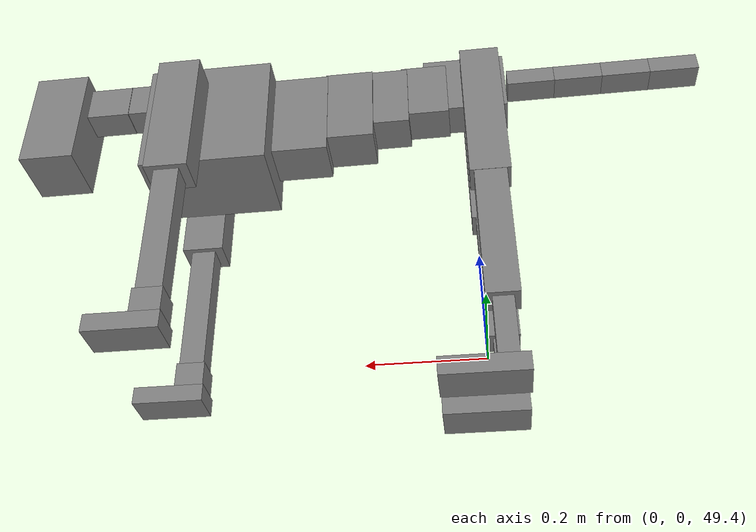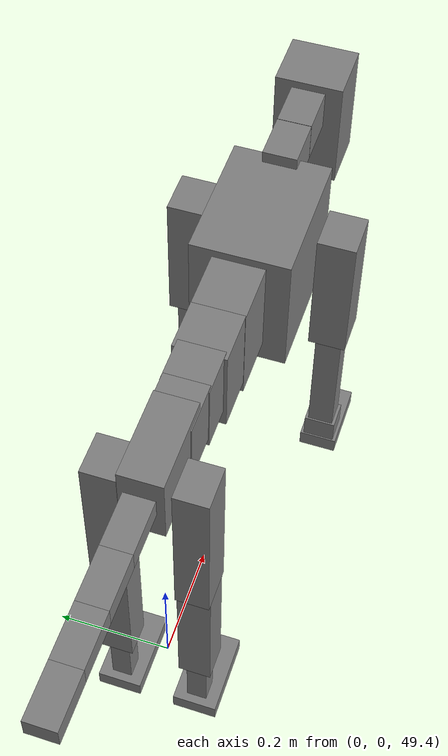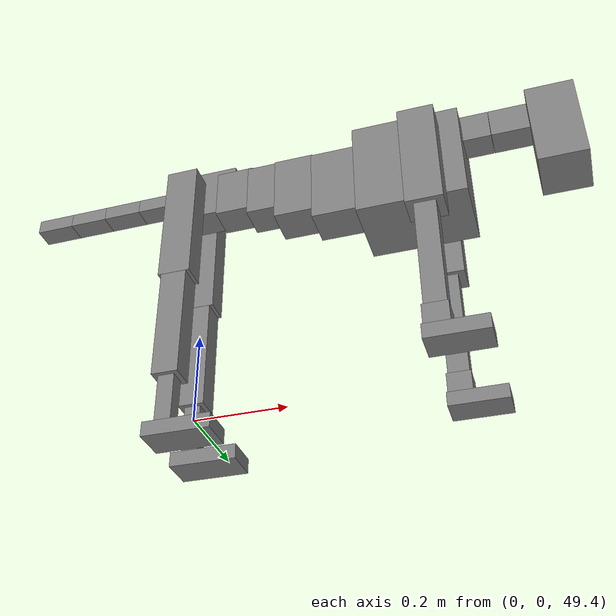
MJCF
<mujoco model="dog">

    <default>
        <joint armature="0.02" stiffness="1" damping="0.2" limited="true"/>
        <geom condim="3" friction="1 0.05 0.05" margin="0.01"/>
        <motor ctrllimited="true" ctrlrange="-1.0 1.0" forcelimited="true" gear="50"/>
    </default>

    <compiler inertiafromgeom="true" angle="radian"/>

    <option timestep="0.016" iterations="50" tolerance="1e-10" solver="Newton" jacobian="dense" cone="pyramidal"/>

    <size nconmax="20000" njmax="60000" nstack="5000000"/>
    <visual>
        <map force="0.1" zfar="30"/>
        <rgba haze="0.15 0.25 0.35 1"/>
        <quality shadowsize="2048"/>
        <global offwidth="800" offheight="800"/>
    </visual>

    <asset>
        <texture type="skybox" builtin="gradient" rgb1="0.3 0.5 0.7" rgb2="0 0 0" width="512" height="512"/>
        <texture name="texplane" type="2d" builtin="checker" rgb1=".2 .3 .4" rgb2=".1 0.15 0.2" width="512" height="512"
                 mark="cross" markrgb=".8 .8 .8"/>
        <texture name="texgeom" type="cube" builtin="flat" mark="cross" width="127" height="1278" rgb1="0.8 0.6 0.4"
                 rgb2="0.8 0.6 0.4" markrgb="1 1 1" random="0.01"/>

        <material name="matplane" reflectance="0.3" texture="texplane" texrepeat="1 1" texuniform="true"/>
        <material name="matgeom" texture="texgeom" texuniform="true" rgba="0.8 0.6 .4 1"/>
    </asset>

    <worldbody>
        <geom name="floor" pos="0 0 0" size="0 0 .25" type="plane" material="matplane" condim="3"/>

        <light directional="false" diffuse=".2 .2 .2" specular="0 0 0" pos="0 0 5" dir="0 0 -1" castshadow="false"/>
        <light mode="targetbodycom" target="torso" directional="false" diffuse=".8 .8 .8" specular="0.3 0.3 0.3"
               pos="0 0 4.0" dir="0 0 -1"/>

        <body name="root" pos="0 0 50">
            <freejoint name="root_1"/>
            <geom type="box" pos="0 0 -0.02" size="0.0774  0.0358  0.063" density="2030"/>

            <body name="spine1" pos="0.054 0 0">
                <joint name="spine1_y" axis="0 1 0" range="0 0.7" limited="true"/>
                <geom type="box" pos="0.02375 0 -0.03" size="0.04375  0.0375  0.05985" density="2030"/>

                <body name="spine2" pos="0.0612 0 0">
                    <joint name="spine2_y" axis="0 1 0" range="-0.15 0.15" limited="true"/>
                    <geom type="box" pos="0.03555  0  -0.04" size="0.04055  0.039  0.06615" density="2030"/>

                    <body name="spine3" pos="0.0730 0 0">
                        <joint name="spine3_y" axis="0 1 0" range="-0.15 0.15" limited="true"/>
                        <geom type="box" pos="0.03555  0  -0.057" size="0.04555  0.0445  0.081" density="2030"/>

                        <body name="spine4" pos="0.0780 0 0">
                            <joint name="spine4_y" axis="0 1 0" range="-0.15 0.15" limited="true"/>
                            <geom type="box" pos="0.05265  0  -0.07" size="0.05265  0.045  0.09135" density="2030"/>

                            <body name="torso" pos="0.1082 0 0">
                                <joint name="torso_y" axis="0 1 0" range="-0.15 0.15" limited="true"/>
                                <geom type="box" pos="0.11925  0  -0.085" size="0.11925  0.085  0.11745"
                                      density="2030"/>

                                <body name="neck1" pos="0.2160  0   0.0180">
                                    <joint name="neck1_y" axis="0 1 0" range="-1.2  -1" limited="true"/>
                                    <geom type="box" pos="0.0423  0  0" size="0.0423  0.03  0.036" density="2325"/>

                                    <body name="neck2" pos="0.0853  0  0">
                                        <joint name="neck2_y" axis="0 1 0" range="0.1  0" limited="true"/>
                                        <geom type="box" pos="0.0423  0  0" size="0.0423  0.03  0.036" density="2325"/>

                                        <body name="head" pos="0.0853  0  0">
                                            <joint name="head_y" axis="0 1 0" range="-0.3  -0.2" limited="true"/>
                                            <geom type="box" pos="0.0531  0  -0.055" size="0.0531  0.06  0.1044"
                                                  density="4030"/>

                                        </body>
                                    </body>
                                </body>

                                <body name="front_shoulder" pos="0.156  0   -0.0480">
                                    <joint name="front_shoulder_y" axis="0 1 0" range="-1 1.5" limited="true"/>
                                    <geom type="box" pos="0 0.13 -0.0996" size="0.0391  0.0334  0.1263" density="1158"/>
                                    <geom type="box" pos="0 -0.13 -0.0996" size="0.0391  0.0334  0.1263"
                                          density="1158"/>

                                    <body name="front_elbow" pos="0  0  -0.1993">
                                        <joint name="front_elbow_y" axis="0 1 0" range="-2 0" limited="true"/>
                                        <geom type="box" pos="0 0.13 -0.1426" size="0.0227  0.0232  0.1426"
                                              density="1081"/>
                                        <geom type="box" pos="0 -0.13 -0.1426" size="0.0227  0.0232  0.1426"
                                              density="1081"/>

                                        <body name="front_wrist" pos="0  0  -0.2853">
                                            <joint name="front_wrist_y" axis="0 1 0" range="-0.2 0" limited="true"/>
                                            <geom type="box" pos="0 0.13 -0.0240" size="0.0259  0.0287  0.0372"
                                                  density="1664"/>
                                            <geom type="box" pos="0 -0.13 -0.0240" size="0.0259  0.0287  0.0372"
                                                  density="1664"/>

                                            <body name="front_finger_end" pos="0  0  -0.0481">
                                                <joint name="front_finger_y" axis="0 1 0" range="-0.4 1"
                                                       limited="true"/>
                                                <geom type="box" pos="0.0344  0.13  -0.0006"
                                                      size="0.0630  0.0344  0.0156" density="1515"/>
                                                <geom type="box" pos="0.0344  -0.13  -0.0006"
                                                      size="0.0630  0.0344  0.0156" density="1515"/>

                                            </body>

                                        </body>
                                    </body>
                                </body>

                            </body>
                        </body>
                    </body>
                </body>
            </body>

            <body name="back_hip" pos="-0.03 0 -0.018">
                <joint name="back_hip_y" axis="0 1 0" range="-1.5 0.3" limited="true"/>
                <geom type="box" pos="0 0.07 -0.1228" size="0.0360  0.0283  0.1456" density="1154"/>
                <geom type="box" pos="0 -0.07 -0.1228" size="0.0360  0.0283  0.1456" density="1154"/>

                <body name="back_knee" pos="0  0  -0.2457">
                    <joint name="back_knee_y" axis="0 1 0" range="0 2.8" limited="true"/>
                    <geom type="box" pos="0 0.07 -0.1280" size="0.0285  0.0280  0.1436" density="1227"/>
                    <geom type="box" pos="0 -0.07 -0.1280" size="0.0285  0.0280  0.1436" density="1227"/>

                    <body name="back_ankle" pos="0  0  -0.2560">
                        <joint name="back_ankle_y" axis="0 1 0" range="-2.2 0" limited="true"/>
                        <geom type="box" pos="0 0.07 -0.0713" size="0.0175  0.0175  0.0825" density="1284"/>
                        <geom type="box" pos="0 -0.07 -0.0713" size="0.0175  0.0175  0.0825" density="1284"/>

                        <body name="back_toe_end" pos="0  0  -0.1425">
                            <joint name="back_toe_y" axis="0 1 0" range="-0.4 1" limited="true"/>
                            <geom type="box" pos="0.0388  0.07  -0.0006" size="0.0711  0.0388  0.0156" density="1515"/>
                            <geom type="box" pos="0.0388  -0.07  -0.0006" size="0.0711  0.0388  0.0156" density="1515"/>

                        </body>
                    </body>
                </body>
            </body>

            <body name="tail1" pos="-0.074 0 -0.006">
                <joint name="tail1_y" axis="0 1 0" range="-0.2 0.2" limited="true"/>
                <geom type="box" pos="-0.0536  0  0" size="0.045  0.025  0.0175" density="1587"/>

                <body name="tail2" pos="-0.09 0 0">
                    <joint name="tail2_y" axis="0 1 0" range="-0.2 0.2" limited="true"/>
                    <geom type="box" pos="-0.0536  0  0" size="0.045  0.025  0.0175" density="1587"/>

                    <body name="tail3" pos="-0.09 0 0">
                        <joint name="tail3_y" axis="0 1 0" range="-0.2 0.2" limited="true"/>
                        <geom type="box" pos="-0.0536  0  0" size="0.045  0.025  0.0175" density="1587"/>

                        <body name="tail4" pos="-0.09 0 0">
                            <joint name="tail4_y" axis="0 1 0" range="-0.2 0.2" limited="true"/>
                            <geom type="box" pos="-0.0536  0  0" size="0.045  0.025  0.0175" density="1587"/>

                        </body>
                    </body>
                </body>
            </body>
        </body>
    </worldbody>

    <actuator>
        <motor joint="spine1_y" forcerange="-150 150     "/>
        <motor joint="spine2_y" forcerange="-150 150     "/>
        <motor joint="spine3_y" forcerange="-150 150     "/>
        <motor joint="spine4_y" forcerange="-150 150     "/>
        <motor joint="torso_y" forcerange="-150 150     "/>
        <motor joint="neck1_y" forcerange="-100 100       "/>
        <motor joint="neck2_y" forcerange="-100 100       "/>
        <motor joint="head_y" forcerange="-150 150       "/>
        <motor joint="front_shoulder_y" forcerange="-153.00 169.76"/>
        <motor joint="front_elbow_y" forcerange="-119.42 149.59"/>
        <motor joint="front_wrist_y" forcerange="-116.87 112.94"/>
        <motor joint="front_finger_y" forcerange="-80.81 62.47"/>
        <motor joint="back_hip_y" forcerange="-200.94 375.82"/>
        <motor joint="back_knee_y" forcerange="-254.37 353.62"/>
        <motor joint="back_angle_y" forcerange="-95.39 84.43"/>
        <motor joint="back_toe_y" forcerange="-105.24 124.97"/>
        <motor joint="tail1_y" forcerange="-50 50     "/>
        <motor joint="tail2_y" forcerange="-50 50     "/>
        <motor joint="tail3_y" forcerange="-50 50     "/>
        <motor joint="tail4_y" forcerange="-50 50     "/>
    </actuator>
</mujoco>
